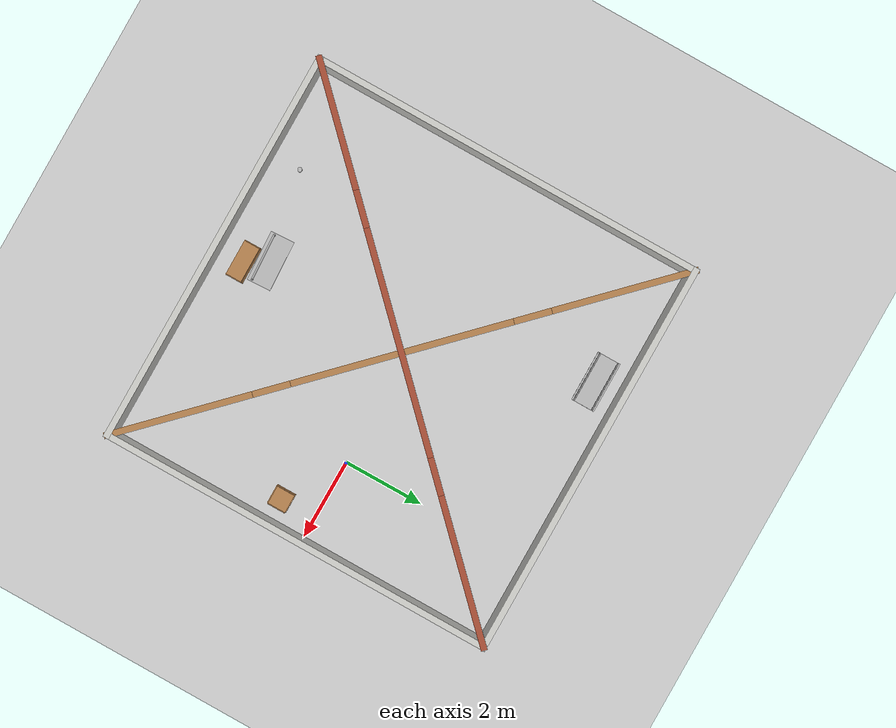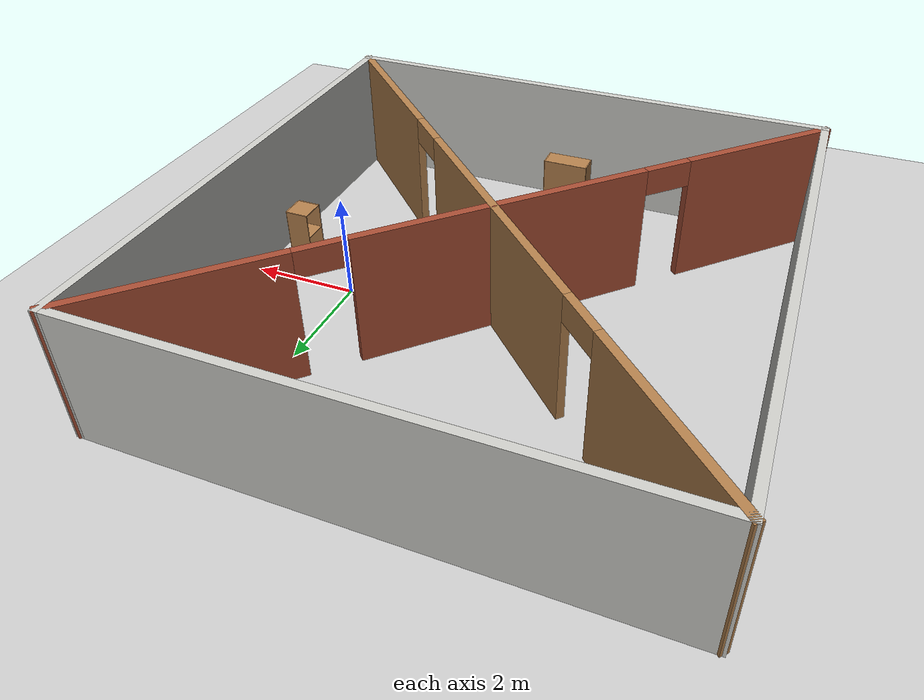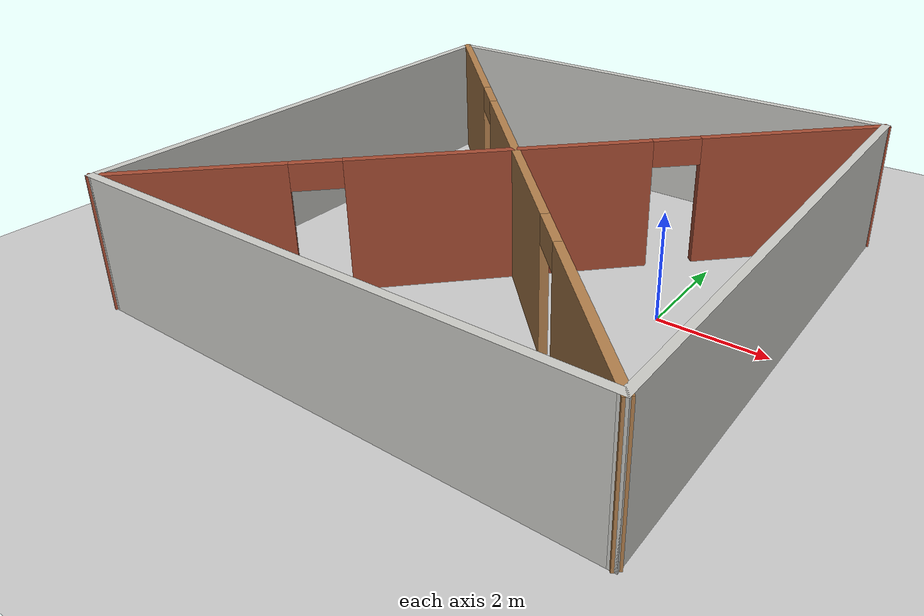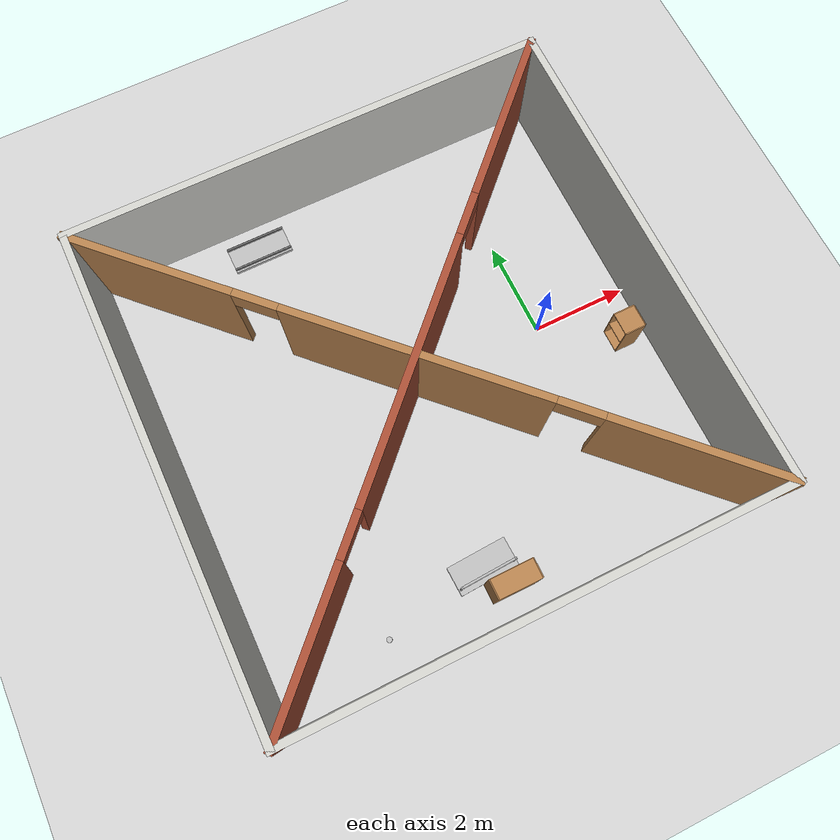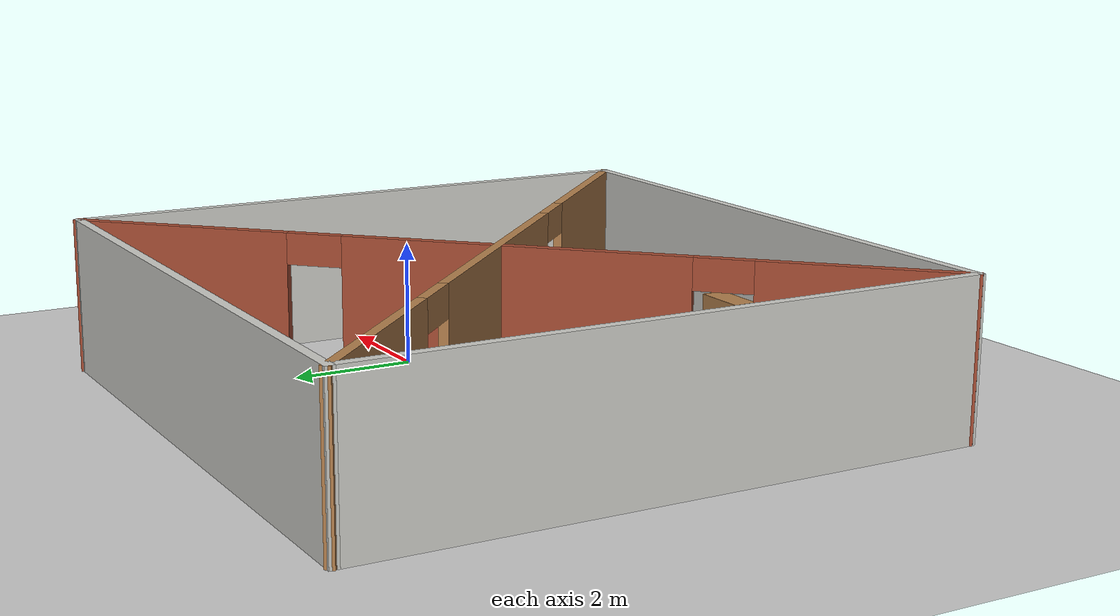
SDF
<sdf version="1.6">
 <world name="default">
  <light name="sun" type="directional">
   <pose>0 0 10 0 -0 0</pose>
   <diffuse>0.8 0.8 0.8 1</diffuse>
   <specular>0.1 0.1 0.1 1</specular>
   <attenuation>
    <range>1000</range>
    <constant>0.9</constant>
    <linear>0.01</linear>
    <quadratic>0.001</quadratic>
   </attenuation>
   <direction>-0.5 0.5 -1</direction>
  </light>
  <model name="ground_plane">
   <static>1</static>
   <link name="link">
    <collision name="collision">
     <geometry><plane><normal>0 0 1</normal><size>100 100</size></plane></geometry>
     <surface><friction><ode><mu>100</mu><mu2>50</mu2></ode></friction></surface>
    </collision>
    <visual name="visual">
     <cast_shadows>0</cast_shadows>
     <geometry><plane><normal>0 0 1</normal><size>100 100</size></plane></geometry>
     <material>
      <script><uri>file://media/materials/scripts/gazebo.material</uri><name>Gazebo/Grey</name></script>
     </material>
    </visual>
   </link>
  </model>
  <gravity>0 0 -9.8</gravity>
  <magnetic_field>6e-06 2.3e-05 -4.2e-05</magnetic_field>
  <atmosphere type="adiabatic"/>
  <physics name="default_physics" default="0" type="ode">
   <max_step_size>0.001</max_step_size>
   <real_time_factor>1</real_time_factor>
   <real_time_update_rate>1000</real_time_update_rate>
  </physics>
  <scene><ambient>0.4 0.4 0.4 1</ambient><background>0.7 0.7 0.7 1</background><shadows>1</shadows></scene>
  <spherical_coordinates>
   <surface_model>EARTH_WGS84</surface_model>
   <latitude_deg>0</latitude_deg>
   <longitude_deg>0</longitude_deg>
   <elevation>0</elevation>
   <heading_deg>0</heading_deg>
  </spherical_coordinates>
  <model name="4_compartments">
   <pose>-2.85794 -0.134268 0 0 -0 0</pose>
   <link name="Wall_10">
    <pose>0 0 0 0 -0 0.785398</pose>
    <visual name="Wall_10_Visual_0">
     <pose>-5.44917 0 1.25 0 -0 0</pose>
     <geometry><box><size>3.18166 0.15 2.5</size></box></geometry>
     <material>
      <script><uri>file://media/materials/scripts/gazebo.material</uri><name>Gazebo/Bricks</name></script>
      <ambient>1 1 1 1</ambient>
     </material>
    </visual>
    <collision name="Wall_10_Collision_0">
     <geometry><box><size>3.18166 0.15 2.5</size></box></geometry>
     <pose>-5.44917 0 1.25 0 -0 0</pose>
    </collision>
    <visual name="Wall_10_Visual_1">
     <pose>-0.238996 0 1.25 0 -0 0</pose>
     <geometry><box><size>5.43869 0.15 2.5</size></box></geometry>
     <material>
      <script><uri>file://media/materials/scripts/gazebo.material</uri><name>Gazebo/Bricks</name></script>
      <ambient>1 1 1 1</ambient>
     </material>
    </visual>
    <collision name="Wall_10_Collision_1">
     <geometry><box><size>5.43869 0.15 2.5</size></box></geometry>
     <pose>-0.238996 0 1.25 0 -0 0</pose>
    </collision>
    <visual name="Wall_10_Visual_2">
     <pose>5.21018 0 1.25 0 -0 0</pose>
     <geometry><box><size>3.65965 0.15 2.5</size></box></geometry>
     <material>
      <script><uri>file://media/materials/scripts/gazebo.material</uri><name>Gazebo/Bricks</name></script>
      <ambient>1 1 1 1</ambient>
     </material>
    </visual>
    <collision name="Wall_10_Collision_2">
     <geometry><box><size>3.65965 0.15 2.5</size></box></geometry>
     <pose>5.21018 0 1.25 0 -0 0</pose>
    </collision>
    <visual name="Wall_10_Visual_3">
     <pose>-3.40834 0 2.25 0 -0 0</pose>
     <geometry><box><size>0.9 0.15 0.5</size></box></geometry>
     <material>
      <script><uri>file://media/materials/scripts/gazebo.material</uri><name>Gazebo/Bricks</name></script>
      <ambient>1 1 1 1</ambient>
     </material>
    </visual>
    <collision name="Wall_10_Collision_3">
     <geometry><box><size>0.9 0.15 0.5</size></box></geometry>
     <pose>-3.40834 0 2.25 0 -0 0</pose>
    </collision>
    <visual name="Wall_10_Visual_4">
     <pose>2.93035 0 2.25 0 -0 0</pose>
     <geometry><box><size>0.9 0.15 0.5</size></box></geometry>
     <material>
      <script><uri>file://media/materials/scripts/gazebo.material</uri><name>Gazebo/Bricks</name></script>
      <ambient>1 1 1 1</ambient>
     </material>
    </visual>
    <collision name="Wall_10_Collision_4">
     <geometry><box><size>0.9 0.15 0.5</size></box></geometry>
     <pose>2.93035 0 2.25 0 -0 0</pose>
    </collision>
   </link>
   <link name="Wall_3">
    <collision name="Wall_3_Collision">
     <geometry><box><size>10 0.15 2.5</size></box></geometry>
     <pose>0 0 1.25 0 -0 0</pose>
    </collision>
    <visual name="Wall_3_Visual">
     <pose>0 0 1.25 0 -0 0</pose>
     <geometry><box><size>10 0.15 2.5</size></box></geometry>
     <material>
      <script><uri>file://media/materials/scripts/gazebo.material</uri><name>Gazebo/CeilingTiled</name></script>
      <ambient>0.435294 0.796078 0.67451 1</ambient>
     </material>
    </visual>
    <pose>0 -4.925 0 0 -0 0</pose>
   </link>
   <link name="Wall_4">
    <collision name="Wall_4_Collision">
     <geometry><box><size>10 0.15 2.5</size></box></geometry>
     <pose>0 0 1.25 0 -0 0</pose>
    </collision>
    <visual name="Wall_4_Visual">
     <pose>0 0 1.25 0 -0 0</pose>
     <geometry><box><size>10 0.15 2.5</size></box></geometry>
     <material>
      <script><uri>file://media/materials/scripts/gazebo.material</uri><name>Gazebo/CeilingTiled</name></script>
      <ambient>0.921569 0.807843 0.615686 1</ambient>
     </material>
    </visual>
    <pose>4.925 0 0 0 -0 1.5708</pose>
   </link>
   <link name="Wall_5">
    <collision name="Wall_5_Collision">
     <geometry><box><size>10 0.15 2.5</size></box></geometry>
     <pose>0 0 1.25 0 -0 0</pose>
    </collision>
    <visual name="Wall_5_Visual">
     <pose>0 0 1.25 0 -0 0</pose>
     <geometry><box><size>10 0.15 2.5</size></box></geometry>
     <material>
      <script><uri>file://media/materials/scripts/gazebo.material</uri><name>Gazebo/CeilingTiled</name></script>
      <ambient>0.921569 0.807843 0.615686 1</ambient>
     </material>
    </visual>
    <pose>0 4.925 0 0 -0 3.14159</pose>
   </link>
   <link name="Wall_6">
    <collision name="Wall_6_Collision">
     <geometry><box><size>10 0.15 2.5</size></box></geometry>
     <pose>0 0 1.25 0 -0 0</pose>
    </collision>
    <visual name="Wall_6_Visual">
     <pose>0 0 1.25 0 -0 0</pose>
     <geometry><box><size>10 0.15 2.5</size></box></geometry>
     <material>
      <script><uri>file://media/materials/scripts/gazebo.material</uri><name>Gazebo/CeilingTiled</name></script>
      <ambient>0.760784 0.662745 0.627451 1</ambient>
     </material>
    </visual>
    <pose>-4.925 0 0 0 0 -1.5708</pose>
   </link>
   <link name="Wall_8">
    <pose>0 0 0 0 0 -0.785398</pose>
    <visual name="Wall_8_Visual_0">
     <pose>-5.29988 0 1.25 0 -0 0</pose>
     <geometry><box><size>3.48024 0.15 2.5</size></box></geometry>
     <material>
      <script><uri>file://media/materials/scripts/gazebo.material</uri><name>Gazebo/Wood</name></script>
      <ambient>1 1 1 1</ambient>
     </material>
    </visual>
    <collision name="Wall_8_Collision_0">
     <geometry><box><size>3.48024 0.15 2.5</size></box></geometry>
     <pose>-5.29988 0 1.25 0 -0 0</pose>
    </collision>
    <visual name="Wall_8_Visual_1">
     <pose>-0.015655 0 1.25 0 -0 0</pose>
     <geometry><box><size>5.28822 0.15 2.5</size></box></geometry>
     <material>
      <script><uri>file://media/materials/scripts/gazebo.material</uri><name>Gazebo/Wood</name></script>
      <ambient>1 1 1 1</ambient>
     </material>
    </visual>
    <collision name="Wall_8_Collision_1">
     <geometry><box><size>5.28822 0.15 2.5</size></box></geometry>
     <pose>-0.015655 0 1.25 0 -0 0</pose>
    </collision>
    <visual name="Wall_8_Visual_2">
     <pose>5.28423 0 1.25 0 -0 0</pose>
     <geometry><box><size>3.51155 0.15 2.5</size></box></geometry>
     <material>
      <script><uri>file://media/materials/scripts/gazebo.material</uri><name>Gazebo/Wood</name></script>
      <ambient>1 1 1 1</ambient>
     </material>
    </visual>
    <collision name="Wall_8_Collision_2">
     <geometry><box><size>3.51155 0.15 2.5</size></box></geometry>
     <pose>5.28423 0 1.25 0 -0 0</pose>
    </collision>
    <visual name="Wall_8_Visual_3">
     <pose>-3.10976 0 2.25 0 -0 0</pose>
     <geometry><box><size>0.9 0.15 0.5</size></box></geometry>
     <material>
      <script><uri>file://media/materials/scripts/gazebo.material</uri><name>Gazebo/Wood</name></script>
      <ambient>1 1 1 1</ambient>
     </material>
    </visual>
    <collision name="Wall_8_Collision_3">
     <geometry><box><size>0.9 0.15 0.5</size></box></geometry>
     <pose>-3.10976 0 2.25 0 -0 0</pose>
    </collision>
    <visual name="Wall_8_Visual_4">
     <pose>3.07845 0 2.25 0 -0 0</pose>
     <geometry><box><size>0.9 0.15 0.5</size></box></geometry>
     <material>
      <script><uri>file://media/materials/scripts/gazebo.material</uri><name>Gazebo/Wood</name></script>
      <ambient>1 1 1 1</ambient>
     </material>
    </visual>
    <collision name="Wall_8_Collision_4">
     <geometry><box><size>0.9 0.15 0.5</size></box></geometry>
     <pose>3.07845 0 2.25 0 -0 0</pose>
    </collision>
   </link>
   <static>1</static>
  </model>
  <model name="cabinet">
   <static>1</static>
   <link name="cabinet_bottom_plate">
    <inertial>
     <pose>0 0 -1 0 -0 0</pose>
     <inertia><ixx>2.05</ixx><ixy>0</ixy><ixz>0</ixz><iyy>2.05</iyy><iyz>0</iyz><izz>2.05</izz></inertia>
     <mass>25</mass>
    </inertial>
    <collision name="cabinet_bottom_plate_geom">
     <pose>0 0 0.01 0 -0 0</pose>
     <geometry><box><size>0.45 0.45 0.02</size></box></geometry>
    </collision>
    <visual name="cabinet_bottom_plate_geom_visual">
     <pose>0 0 0.01 0 -0 0</pose>
     <geometry><box><size>0.45 0.45 0.02</size></box></geometry>
     <material>
      <script><uri>file://media/materials/scripts/gazebo.material</uri><name>Gazebo/Wood</name></script>
     </material>
    </visual>
    <collision name="cabinet_bottom_plate_geom_cabinet_back_plate">
     <pose>0.235 0 0.51 0 -0 0</pose>
     <geometry><box><size>0.02 0.45 1.02</size></box></geometry>
    </collision>
    <visual name="cabinet_bottom_plate_geom_cabinet_back_plate_visual">
     <pose>0.235 0 0.51 0 -0 0</pose>
     <geometry><box><size>0.02 0.45 1.02</size></box></geometry>
     <material>
      <script><uri>file://media/materials/scripts/gazebo.material</uri><name>Gazebo/Wood</name></script>
     </material>
    </visual>
    <collision name="cabinet_bottom_plate_geom_cabinet_left_plate">
     <pose>0 0.235 0.51 0 -0 0</pose>
     <geometry><box><size>0.45 0.02 1.02</size></box></geometry>
    </collision>
    <visual name="cabinet_bottom_plate_geom_cabinet_left_plate_visual">
     <pose>0 0.235 0.51 0 -0 0</pose>
     <geometry><box><size>0.45 0.02 1.02</size></box></geometry>
     <material>
      <script><uri>file://media/materials/scripts/gazebo.material</uri><name>Gazebo/Wood</name></script>
     </material>
    </visual>
    <collision name="cabinet_bottom_plate_geom_cabinet_middle_plate">
     <pose>0 0 0.51 0 -0 0</pose>
     <geometry><box><size>0.45 0.45 0.02</size></box></geometry>
    </collision>
    <visual name="cabinet_bottom_plate_geom_cabinet_middle_plate_visual">
     <pose>0 0 0.51 0 -0 0</pose>
     <geometry><box><size>0.45 0.45 0.02</size></box></geometry>
     <material>
      <script><uri>file://media/materials/scripts/gazebo.material</uri><name>Gazebo/Wood</name></script>
     </material>
    </visual>
    <collision name="cabinet_bottom_plate_geom_cabinet_right_plate">
     <pose>0 -0.235 0.51 0 -0 0</pose>
     <geometry><box><size>0.45 0.02 1.02</size></box></geometry>
    </collision>
    <visual name="cabinet_bottom_plate_geom_cabinet_right_plate_visual">
     <pose>0 -0.235 0.51 0 -0 0</pose>
     <geometry><box><size>0.45 0.02 1.02</size></box></geometry>
     <material>
      <script><uri>file://media/materials/scripts/gazebo.material</uri><name>Gazebo/Wood</name></script>
     </material>
    </visual>
    <collision name="cabinet_bottom_plate_geom_cabinet_top_plate">
     <pose>0 0 1.01 0 -0 0</pose>
     <geometry><box><size>0.45 0.45 0.02</size></box></geometry>
    </collision>
    <visual name="cabinet_bottom_plate_geom_cabinet_top_plate_visual">
     <pose>0 0 1.01 0 -0 0</pose>
     <geometry><box><size>0.45 0.45 0.02</size></box></geometry>
     <material>
      <script><uri>file://media/materials/scripts/gazebo.material</uri><name>Gazebo/Wood</name></script>
     </material>
    </visual>
   </link>
   <pose>1.46097 -0.895714 0 0 -0 0</pose>
  </model>
  <model name="beer">
   <link name="link">
    <pose>0 0 0.115 0 -0 0</pose>
    <inertial>
     <mass>0.39</mass>
     <inertia><ixx>0.00058</ixx><ixy>0</ixy><ixz>0</ixz><iyy>0.00058</iyy><iyz>0</iyz><izz>0.00019</izz></inertia>
    </inertial>
    <collision name="collision">
     <geometry><cylinder><radius>0.055</radius><length>0.23</length></cylinder></geometry>
    </collision>
    <visual name="visual">
     <geometry><cylinder><radius>0.055</radius><length>0.23</length></cylinder></geometry>
     <material>
      <script>
       <uri>model://beer/materials/scripts</uri>
       <uri>model://beer/materials/textures</uri>
       <name>Beer/Diffuse</name>
      </script>
     </material>
    </visual>
   </link>
   <pose>-5.41759 -4.30271 0.009993 -1e-06 -0 -5.2e-05</pose>
  </model>
  <model name="bookshelf">
   <static>1</static>
   <link name="link">
    <inertial><mass>1</mass></inertial>
    <collision name="back">
     <pose>0 0.005 0.6 0 -0 0</pose>
     <geometry><box><size>0.9 0.01 1.2</size></box></geometry>
    </collision>
    <visual name="visual1">
     <pose>0 0.005 0.6 0 -0 0</pose>
     <geometry><box><size>0.9 0.01 1.2</size></box></geometry>
     <material>
      <script><uri>file://media/materials/scripts/gazebo.material</uri><name>Gazebo/Wood</name></script>
     </material>
    </visual>
    <collision name="left_side">
     <pose>0.45 -0.195 0.6 0 -0 0</pose>
     <geometry><box><size>0.02 0.4 1.2</size></box></geometry>
    </collision>
    <visual name="visual2">
     <pose>0.45 -0.195 0.6 0 -0 0</pose>
     <geometry><box><size>0.02 0.4 1.2</size></box></geometry>
     <material>
      <script><uri>file://media/materials/scripts/gazebo.material</uri><name>Gazebo/Wood</name></script>
     </material>
    </visual>
    <collision name="right_side">
     <pose>-0.45 -0.195 0.6 0 -0 0</pose>
     <geometry><box><size>0.02 0.4 1.2</size></box></geometry>
    </collision>
    <visual name="visual3">
     <pose>-0.45 -0.195 0.6 0 -0 0</pose>
     <geometry><box><size>0.02 0.4 1.2</size></box></geometry>
     <material>
      <script><uri>file://media/materials/scripts/gazebo.material</uri><name>Gazebo/Wood</name></script>
     </material>
    </visual>
    <collision name="bottom">
     <pose>0 -0.195 0.03 0 -0 0</pose>
     <geometry><box><size>0.88 0.4 0.06</size></box></geometry>
    </collision>
    <visual name="visual4">
     <pose>0 -0.195 0.03 0 -0 0</pose>
     <geometry><box><size>0.88 0.4 0.06</size></box></geometry>
     <material>
      <script><uri>file://media/materials/scripts/gazebo.material</uri><name>Gazebo/Wood</name></script>
     </material>
    </visual>
    <collision name="top">
     <pose>0 -0.195 1.19 0 -0 0</pose>
     <geometry><box><size>0.88 0.4 0.02</size></box></geometry>
    </collision>
    <visual name="visual5">
     <pose>0 -0.195 1.19 0 -0 0</pose>
     <geometry><box><size>0.88 0.4 0.02</size></box></geometry>
     <material>
      <script><uri>file://media/materials/scripts/gazebo.material</uri><name>Gazebo/Wood</name></script>
     </material>
    </visual>
    <collision name="low_shelf">
     <pose>0 -0.195 0.43 0 -0 0</pose>
     <geometry><box><size>0.88 0.4 0.02</size></box></geometry>
    </collision>
    <visual name="visual6">
     <pose>0 -0.195 0.43 0 -0 0</pose>
     <geometry><box><size>0.88 0.4 0.02</size></box></geometry>
     <material>
      <script><uri>file://media/materials/scripts/gazebo.material</uri><name>Gazebo/Wood</name></script>
     </material>
    </visual>
    <collision name="high_shelf">
     <pose>0 -0.195 0.8 0 -0 0</pose>
     <geometry><box><size>0.88 0.4 0.02</size></box></geometry>
    </collision>
    <visual name="visual7">
     <pose>0 -0.195 0.8 0 -0 0</pose>
     <geometry><box><size>0.88 0.4 0.02</size></box></geometry>
     <material>
      <script><uri>file://media/materials/scripts/gazebo.material</uri><name>Gazebo/Wood</name></script>
     </material>
    </visual>
   </link>
   <pose>-2.90198 -4.17443 0 0 -0 0</pose>
  </model>
  <model name="frc2016_moat">
   <static>1</static>
   <link name="link">
    <inertial>
     <mass>10</mass>
     <pose>0 0 0.06738 0 -0 0</pose>
     <inertia><ixx>0.312195</ixx><ixy>0</ixy><ixz>0</ixz><iyy>1.35927</iyy><iyz>0</iyz><izz>1.64109</izz></inertia>
    </inertial>
    <visual name="platform">
     <pose>0 0 0.0381 0 -0 0</pose>
     <geometry><box><size>1.27 0.5969 0.0762</size></box></geometry>
    </visual>
    <collision name="platform">
     <pose>0 0 0.0381 0 -0 0</pose>
     <geometry><box><size>1.27 0.5969 0.0762</size></box></geometry>
    </collision>
    <visual name="tube1_side1">
     <pose>0 -0.25876 0.10301 0 -0 0</pose>
     <geometry><box><size>1.27 0.003175 0.0635</size></box></geometry>
     <material><ambient>0.46 0.46 0.46 1</ambient><diffuse>0.46 0.46 0.46 1</diffuse></material>
    </visual>
    <collision name="tube1_side1">
     <pose>0 -0.25876 0.10301 0 -0 0</pose>
     <geometry><box><size>1.27 0.003175 0.0635</size></box></geometry>
    </collision>
    <visual name="tube1_side2">
     <pose>0 -0.22384 0.10301 0 -0 0</pose>
     <geometry><box><size>1.27 0.003175 0.0635</size></box></geometry>
     <material><ambient>0.46 0.46 0.46 1</ambient><diffuse>0.46 0.46 0.46 1</diffuse></material>
    </visual>
    <collision name="tube1_side2">
     <pose>0 -0.22384 0.10301 0 -0 0</pose>
     <geometry><box><size>1.27 0.003175 0.0635</size></box></geometry>
    </collision>
    <visual name="tube1_top">
     <pose>0 -0.2413 0.13317 0 -0 0</pose>
     <geometry><box><size>1.27 0.0381 0.003175</size></box></geometry>
     <material><ambient>0.46 0.46 0.46 1</ambient><diffuse>0.46 0.46 0.46 1</diffuse></material>
    </visual>
    <collision name="tube1_top">
     <pose>0 -0.2413 0.13317 0 -0 0</pose>
     <geometry><box><size>1.27 0.0381 0.003175</size></box></geometry>
    </collision>
    <visual name="tube2_side1">
     <pose>0 0.22384 0.10301 0 -0 0</pose>
     <geometry><box><size>1.27 0.003175 0.0635</size></box></geometry>
     <material><ambient>0.46 0.46 0.46 1</ambient><diffuse>0.46 0.46 0.46 1</diffuse></material>
    </visual>
    <collision name="tube2_side1">
     <pose>0 0.22384 0.10301 0 -0 0</pose>
     <geometry><box><size>1.27 0.003175 0.0635</size></box></geometry>
    </collision>
    <visual name="tube2_side2">
     <pose>0 0.25876 0.10301 0 -0 0</pose>
     <geometry><box><size>1.27 0.003175 0.0635</size></box></geometry>
     <material><ambient>0.46 0.46 0.46 1</ambient><diffuse>0.46 0.46 0.46 1</diffuse></material>
    </visual>
    <collision name="tube2_side2">
     <pose>0 0.25876 0.10301 0 -0 0</pose>
     <geometry><box><size>1.27 0.003175 0.0635</size></box></geometry>
    </collision>
    <visual name="tube2_top">
     <pose>0 0.2413 0.13317 0 -0 0</pose>
     <geometry><box><size>1.27 0.0381 0.003175</size></box></geometry>
     <material><ambient>0.46 0.46 0.46 1</ambient><diffuse>0.46 0.46 0.46 1</diffuse></material>
    </visual>
    <collision name="tube2_top">
     <pose>0 0.2413 0.13317 0 -0 0</pose>
     <geometry><box><size>1.27 0.0381 0.003175</size></box></geometry>
    </collision>
   </link>
   <pose>-4.50478 4.15848 0 0 -0 0</pose>
  </model>
  <model name="frc2016_lowbar">
   <link name="base">
    <inertial>
     <mass>50</mass>
     <inertia>
      <ixx>0.035543</ixx>
      <ixy>0</ixy>
      <ixz>0</ixz>
      <iyy>0.134412</iyy>
      <iyz>0</iyz>
      <izz>0.165376</izz>
     </inertia>
    </inertial>
    <visual name="platform">
     <pose>0 0 0.039065 0 -0 0</pose>
     <geometry><box><size>1.26 0.5996 0.07813</size></box></geometry>
    </visual>
    <collision name="platform">
     <pose>0 0 0.039065 0 -0 0</pose>
     <geometry><box><size>1.27 0.6096 0.07813</size></box></geometry>
    </collision>
    <visual name="right_column">
     <pose>-0.57845 -0.18464 0.26863 0 -0 0</pose>
     <geometry><cylinder><radius>0.0254</radius><length>0.381</length></cylinder></geometry>
    </visual>
    <collision name="right_column">
     <pose>-0.57845 -0.18464 0.26863 0 -0 0</pose>
     <geometry><cylinder><radius>0.0254</radius><length>0.381</length></cylinder></geometry>
    </collision>
    <visual name="left_column">
     <pose>0.57845 -0.18464 0.26863 0 -0 0</pose>
     <geometry><cylinder><radius>0.0254</radius><length>0.381</length></cylinder></geometry>
    </visual>
    <collision name="left_column">
     <pose>0.57845 -0.18464 0.26863 0 -0 0</pose>
     <geometry><cylinder><radius>0.0254</radius><length>0.381</length></cylinder></geometry>
    </collision>
    <visual name="horizontal">
     <pose>0 -0.18464 0.43556 0 1.5707 0</pose>
     <geometry><cylinder><radius>0.0254</radius><length>1.2018</length></cylinder></geometry>
    </visual>
    <collision name="horizontal">
     <pose>0 -0.18464 0.43556 0 1.5707 0</pose>
     <geometry><cylinder><radius>0.0254</radius><length>1.2018</length></cylinder></geometry>
    </collision>
   </link>
   <link name="wall">
    <pose>0 -0.1778 0.24323 0 -0 0</pose>
    <inertial>
     <mass>1</mass>
     <inertia>
      <ixx>0.00774528</ixx>
      <ixy>0</ixy>
      <ixz>0</ixz>
      <iyy>0.116613</iyy>
      <iyz>0</iyz>
      <izz>0.108874</izz>
     </inertia>
    </inertial>
    <visual name="visual">
     <geometry><box><size>1.1176 0.00635 0.3</size></box></geometry>
     <material><ambient>0.46 0.46 0.46 1</ambient><diffuse>0.46 0.46 0.46 1</diffuse></material>
    </visual>
    <collision name="collision"><geometry><box><size>1.143 0.00635 0.3</size></box></geometry></collision>
   </link>
   <joint name="bar_joint" type="revolute">
    <pose>0 0 0.36378 0 -0 0</pose>
    <parent>base</parent>
    <child>wall</child>
    <axis>
     <xyz>1 0 0</xyz>
     <limit><lower>-1.5707</lower><upper>1.5707</upper></limit>
     <use_parent_model_frame>0</use_parent_model_frame>
     <dynamics><spring_reference>0</spring_reference><spring_stiffness>0</spring_stiffness></dynamics>
    </axis>
   </joint>
   <pose>-3.22686 -3.85341 0.009813 0 -0.000295 0.046857</pose>
  </model>
 </world>
</sdf>
